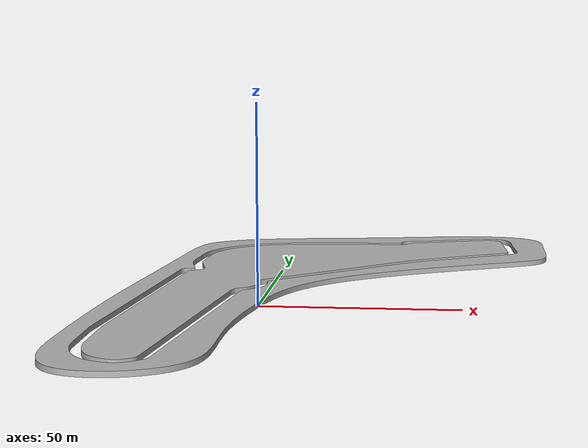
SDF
<?xml version='1.0'?>

<sdf version='1.4'>

  <model name="monza_track">

    <link name="link">

      <collision name="collision">
        <geometry>
          <mesh>
            <uri>model://audubon-gazebo/world/monza_track/monza_track.stl</uri>
          </mesh>
        </geometry>
      </collision>

      <visual name="visual">
        <geometry>
          <mesh>
            <uri>model://audubon-gazebo/world/monza_track/monza_track.stl</uri>
          </mesh>
        </geometry>
      </visual>

    </link>

    <static>1</static>

  </model>

</sdf>
